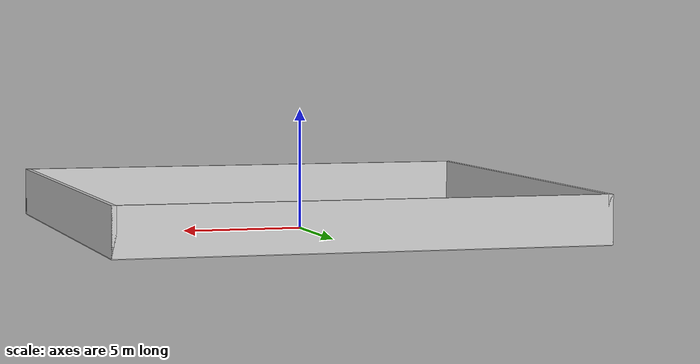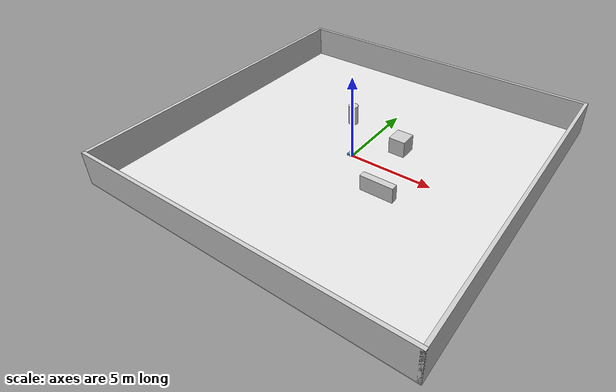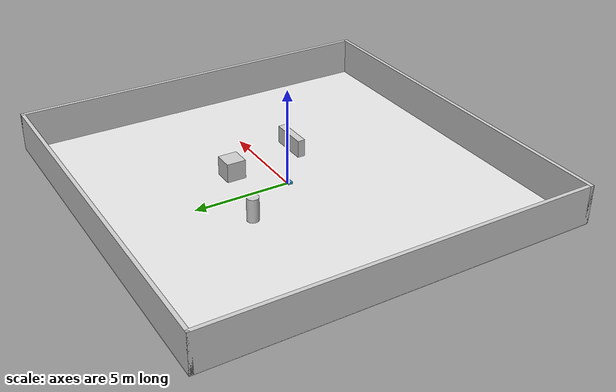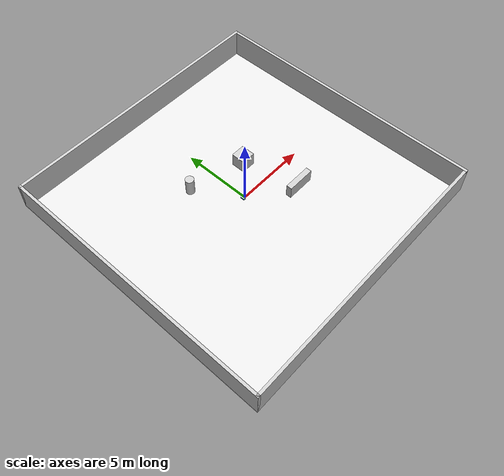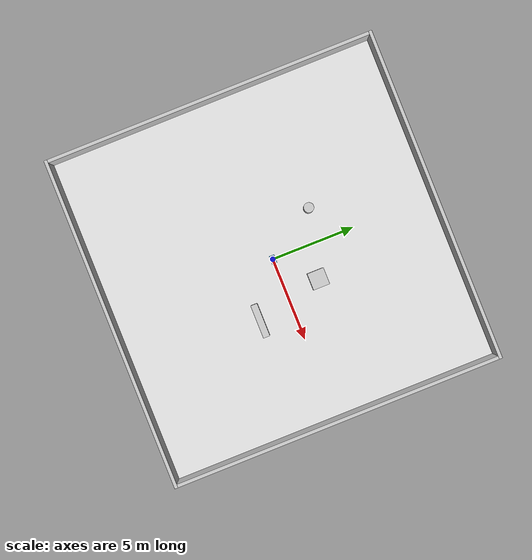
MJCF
<mujoco model="simple_fast_robot">
  <!-- Ultra-fast physics settings -->
  <option timestep="0.02" gravity="0 0 -9.81" iterations="10" solver="PGS"/>

  <statistic center="0 0 0.5" extent="5" meansize="0.1"/>

  <visual>
    <headlight diffuse="0.8 0.8 0.8" ambient="0.3 0.3 0.3" specular="0 0 0"/>
    <rgba haze="0.15 0.25 0.35 1"/>
    <global azimuth="-120" elevation="-20"/>
  </visual>

  <asset>
    <material name="robot_mat" rgba="0.2 0.6 0.8 1" reflectance="0.1"/>
    <material name="floor_mat" rgba="0.9 0.9 0.9 1" reflectance="0.2"/>
    <material name="wall_mat" rgba="0.8 0.8 0.8 1" reflectance="0.1"/>
  </asset>

  <worldbody>
    <!-- Simple environment -->
    <light name="main_light" pos="0 0 3" dir="0 0 -1" diffuse="1 1 1"/>
    <geom name="floor" type="plane" size="10 10 0.1" material="floor_mat" pos="0 0 0"/>

    <!-- Simple walls -->
    <geom name="wall_n" type="box" size="10 0.1 1" pos="0 9.9 1" material="wall_mat"/>
    <geom name="wall_s" type="box" size="10 0.1 1" pos="0 -9.9 1" material="wall_mat"/>
    <geom name="wall_e" type="box" size="0.1 10 1" pos="9.9 0 1" material="wall_mat"/>
    <geom name="wall_w" type="box" size="0.1 10 1" pos="-9.9 0 1" material="wall_mat"/>

    <!-- Few simple obstacles -->
    <geom name="obstacle1" type="box" size="0.5 0.5 0.5" pos="2 2 0.5" material="wall_mat"/>
    <geom name="obstacle2" type="cylinder" size="0.3 0.8" pos="-2 3 0.4" material="wall_mat"/>
    <geom name="obstacle3" type="box" size="1 0.2 0.6" pos="3 -2 0.3" material="wall_mat"/>

    <!-- Simple robot with basic shapes -->
    <body name="robot" pos="0 0 0.1">
      <!-- Main base (box) -->
      <geom name="base" type="box" size="0.25 0.15 0.05" material="robot_mat" mass="2"/>
      <joint name="base_x" type="slide" axis="1 0 0" range="-10 10"/>
      <joint name="base_y" type="slide" axis="0 1 0" range="-10 10"/>
      <joint name="base_rot" type="hinge" axis="0 0 1" range="-3.14 3.14"/>

      <!-- Simple sensor mast -->
      <body name="sensor_mast" pos="0 0 0.15">
        <geom name="mast" type="cylinder" size="0.02 0.1" material="robot_mat" mass="0.1"/>

        <!-- LIDAR sensor (invisible) -->
        <body name="lidar" pos="0 0 0.05">
          <geom name="lidar_housing" type="cylinder" size="0.03 0.02" material="robot_mat" mass="0.05"/>
        </body>
      </body>

      <!-- Simple arm (optional) -->
      <body name="arm_base" pos="0.1 0 0.05">
        <joint name="arm_lift" type="slide" axis="0 0 1" range="0 0.3"/>
        <geom name="arm_segment" type="box" size="0.02 0.02 0.1" material="robot_mat" mass="0.2"/>
      </body>
    </body>
  </worldbody>

  <!-- Simple actuators -->
  <actuator>
    <motor name="base_x_motor" joint="base_x" gear="100" ctrlrange="-1 1"/>
    <motor name="base_y_motor" joint="base_y" gear="100" ctrlrange="-1 1"/>
    <motor name="base_rot_motor" joint="base_rot" gear="50" ctrlrange="-1 1"/>
    <motor name="arm_lift_motor" joint="arm_lift" gear="30" ctrlrange="-1 1"/>
  </actuator>
</mujoco>
